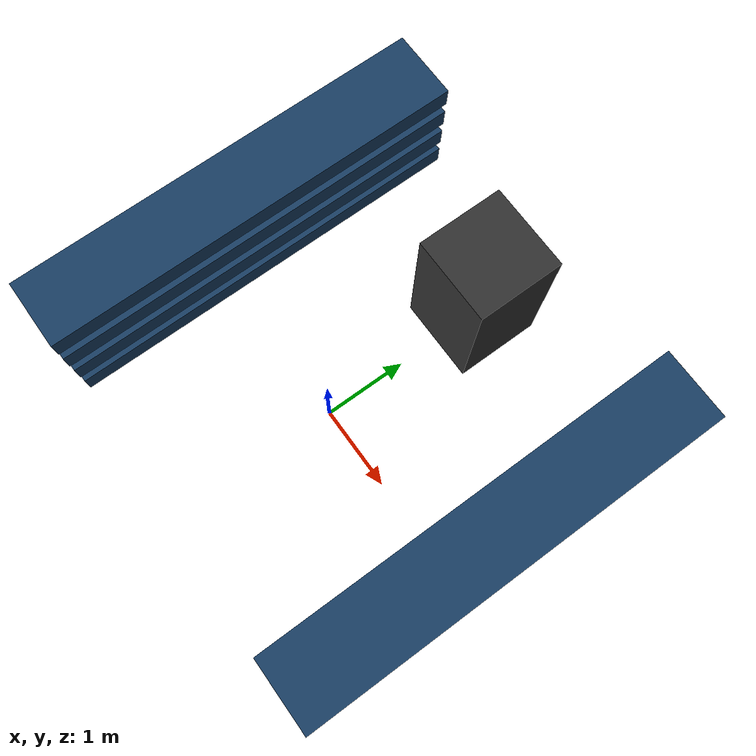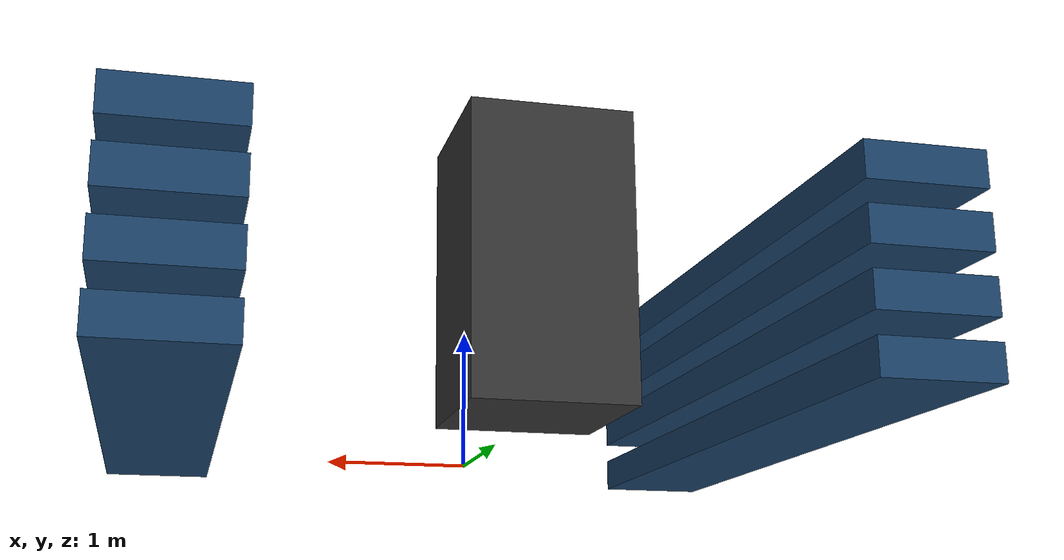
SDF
<?xml version="1.0"?>
<sdf version='1.6'>
  <model name='battery_rack'>
    <static>true</static>

    <link name='switch_box'>
      <pose>0 2 0.90 0 0 1.5775</pose> <collision name='collision'>
        <geometry><box><size>1.0 1.0 1.8</size></box></geometry>
      </collision>
      <visual name='visual'>
        <geometry><box><size>1.0 1.0 1.8</size></box></geometry>
        <material>
          <ambient>0.2 0.2 0.2 1</ambient> <diffuse>0.2 0.2 0.2 1</diffuse>
          <specular>0.4 0.4 0.4 1</specular>
        </material>
      </visual>
    </link>

    <link name='battery_layer_1'>
      <pose>2.2 0.41 0.275 0 0 1.5775</pose> <collision name='collision'>
        <geometry><box><size>4.9 0.82 0.25</size></box></geometry>
      </collision>
      <visual name='visual'>
        <geometry><box><size>4.9 0.82 0.25</size></box></geometry>
        <material>
          <ambient>0.1 0.25 0.4 1</ambient> <diffuse>0.1 0.25 0.4 1</diffuse>
          <specular>0.3 0.3 0.3 1</specular>
        </material>
      </visual>
    </link>

    <link name='battery_layer_2'>
      <pose>2.2 0.41 0.675 0 0 1.5775</pose>
      <collision name='collision'>
        <geometry><box><size>4.9 0.82 0.25</size></box></geometry>
      </collision>
      <visual name='visual'>
        <geometry><box><size>4.9 0.82 0.25</size></box></geometry>
        <material>
          <ambient>0.1 0.25 0.4 1</ambient>
          <diffuse>0.1 0.25 0.4 1</diffuse>
          <specular>0.3 0.3 0.3 1</specular>
        </material>
      </visual>
    </link>

    <link name='battery_layer_3'>
      <pose>2.2 0.41 1.075 0 0 1.5775</pose>
      <collision name='collision'>
        <geometry><box><size>4.9 0.82 0.25</size></box></geometry>
      </collision>
      <visual name='visual'>
        <geometry><box><size>4.9 0.82 0.25</size></box></geometry>
        <material>
          <ambient>0.1 0.25 0.4 1</ambient>
          <diffuse>0.1 0.25 0.4 1</diffuse>
          <specular>0.3 0.3 0.3 1</specular>
        </material>
      </visual>
    </link>

    <link name='battery_layer_4'>
      <pose>2.2 0.41 1.475 0 0 1.5775</pose>
      <collision name='collision'>
        <geometry><box><size>4.9 0.82 0.25</size></box></geometry>
      </collision>
      <visual name='visual'>
        <geometry><box><size>4.9 0.82 0.25</size></box></geometry>
        <material>
          <ambient>0.1 0.25 0.4 1</ambient>
          <diffuse>0.1 0.25 0.4 1</diffuse>
          <specular>0.3 0.3 0.3 1</specular>
        </material>
      </visual>
    </link>

    <link name='battery_layer_5'>
      <pose>-2.2 0.41 0.275 0 0 1.5775</pose> <collision name='collision'>
        <geometry><box><size>4.9 0.82 0.25</size></box></geometry>
      </collision>
      <visual name='visual'>
        <geometry><box><size>4.9 0.82 0.25</size></box></geometry>
        <material>
          <ambient>0.1 0.25 0.4 1</ambient> <diffuse>0.1 0.25 0.4 1</diffuse>
          <specular>0.3 0.3 0.3 1</specular>
        </material>
      </visual>
    </link>

    <link name='battery_layer_6'>
      <pose>-2.2 0.41 0.675 0 0 1.5775</pose>
      <collision name='collision'>
        <geometry><box><size>4.9 0.82 0.25</size></box></geometry>
      </collision>
      <visual name='visual'>
        <geometry><box><size>4.9 0.82 0.25</size></box></geometry>
        <material>
          <ambient>0.1 0.25 0.4 1</ambient>
          <diffuse>0.1 0.25 0.4 1</diffuse>
          <specular>0.3 0.3 0.3 1</specular>
        </material>
      </visual>
    </link>

    <link name='battery_layer_7'>
      <pose>-2.2 0.41 1.075 0 0 1.5775</pose>
      <collision name='collision'>
        <geometry><box><size>4.9 0.82 0.25</size></box></geometry>
      </collision>
      <visual name='visual'>
        <geometry><box><size>4.9 0.82 0.25</size></box></geometry>
        <material>
          <ambient>0.1 0.25 0.4 1</ambient>
          <diffuse>0.1 0.25 0.4 1</diffuse>
          <specular>0.3 0.3 0.3 1</specular>
        </material>
      </visual>
    </link>

    <link name='battery_layer_8'>
      <pose>-2.2 0.41 1.475 0 0 1.5775</pose>
      <collision name='collision'>
        <geometry><box><size>4.9 0.82 0.25</size></box></geometry>
      </collision>
      <visual name='visual'>
        <geometry><box><size>4.9 0.82 0.25</size></box></geometry>
        <material>
          <ambient>0.1 0.25 0.4 1</ambient>
          <diffuse>0.1 0.25 0.4 1</diffuse>
          <specular>0.3 0.3 0.3 1</specular>
        </material>
      </visual>
    </link>
  </model>
</sdf>
